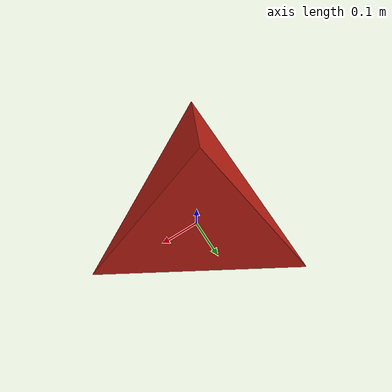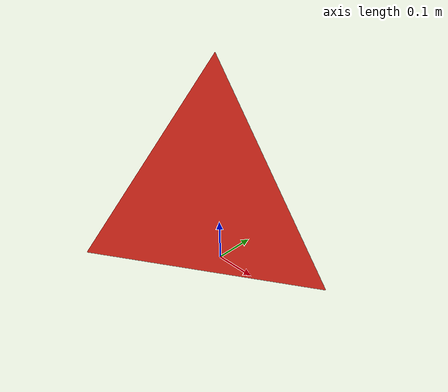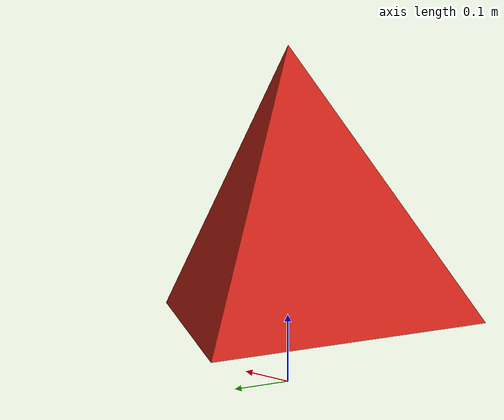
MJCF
<mujoco model="baseline_tetrahedron">
  <compiler angle="radian"/>
  <asset>
    <mesh name="tetrahedron"
          vertex="0.30 0.00 -0.12
                 -0.15 0.26 -0.12
                 -0.15 -0.26 -0.12
                  0.00 0.00 0.30"
          scale="1 1 1"/>
    <material name="steel" rgba="0.85 0.15 0.10 1" specular="0.6" shininess="0.5"/>
  </asset>
  <worldbody>
    <body name="bot" pos="0 0 0.20">
      <freejoint name="root"/>
      <geom name="tetra_geom" type="mesh" mesh="tetrahedron"
            material="steel" mass="200"
            friction="0.6 0.005 0.0001"/>
    </body>
  </worldbody>
  <actuator/>
</mujoco>
